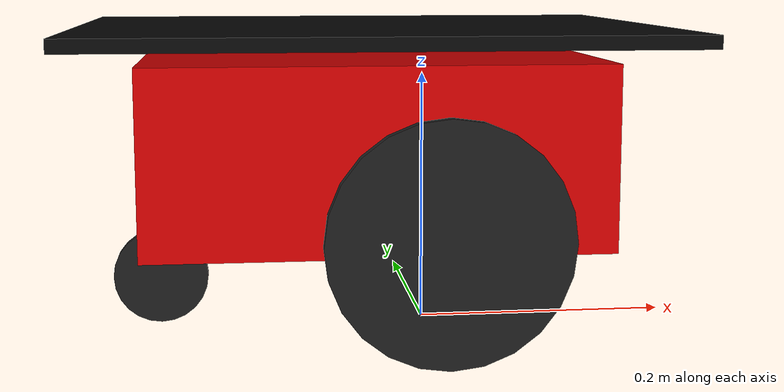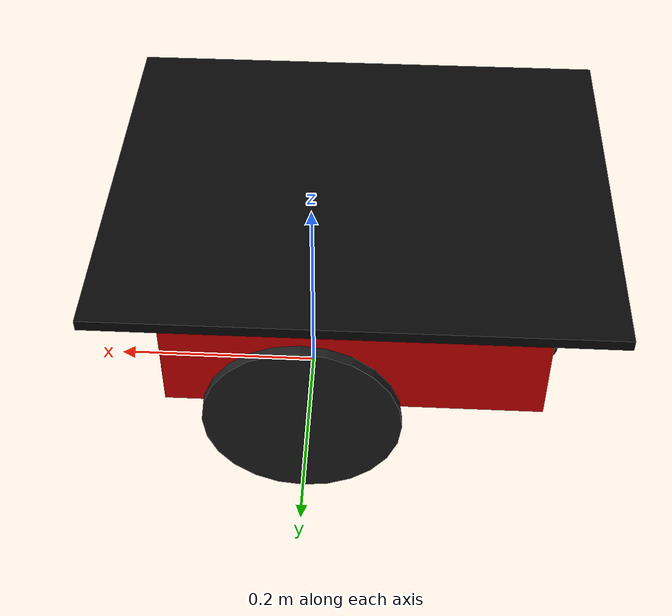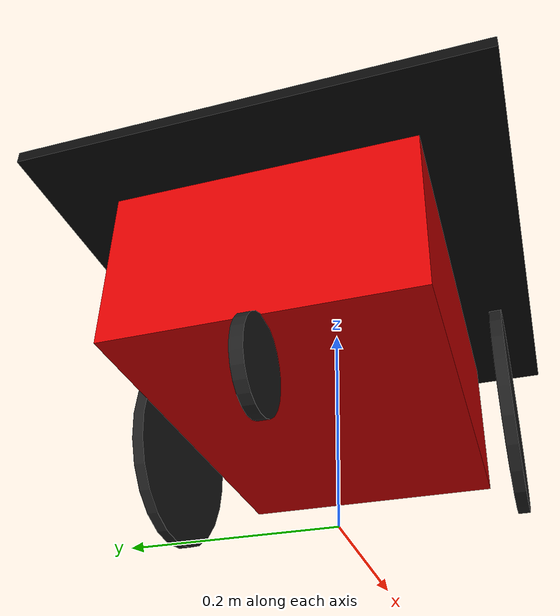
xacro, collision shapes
<?xml version="1.0"?>
<robot name="pioneer3dx"
  xmlns:sensor="http://playerstage.sourceforge.net/gazebo/xmlschema/#sensor"
  xmlns:controller="http://playerstage.sourceforge.net/gazebo/xmlschema/#controller"
  xmlns:interface="http://playerstage.sourceforge.net/gazebo/xmlschema/#interface"
  xmlns:xacro="http://ros.org/wiki/xacro"
  >

  <!-- BEGIN XACRO DEFINITIONS      -->

  <!-- Define PI -->
  <xacro:property name="PI" value="3.14159"/>

  <!-- Wheel moments of inertia -->
  <xacro:property name="IXX" value="0.012411765597"/>
  <xacro:property name="IYY" value="0.015218160428"/>
  <xacro:property name="IZZ" value="0.011763977943"/>
  <xacro:property name="IXY" value="0.0"           />
  <xacro:property name="IXZ" value="0.0"           />
  <xacro:property name="IYZ" value="0.0"           />

  <!-- Macro to create a wheel -->
  <xacro:macro name="WHEEL" params="name parent reflect">

    <!-- Wheel -->
    <link name="${name}_wheel">
      <inertial>
        <mass value="0.5"/>
        <origin xyz="0 0 0"/>
        <inertia ixx="${IXX}" iyy="${IYY}" izz="${IZZ}" ixy="${IXY}" ixz="${IXZ}" iyz="${IYZ}"/>
      </inertial>
      <visual>
        <origin xyz="0 0 0" rpy="0 0 0"/>
        <geometry>
          <mesh filename="package://p2os_urdf/meshes/p3dx_meshes/${name}_wheel.stl"/>
        </geometry>
        <material name="WheelBlack"/>
      </visual>
      <collision>
        <origin xyz="0 0 0" rpy="${-PI/2} 0 0"/>
        <geometry>
          <cylinder radius="0.09" length="0.01"/>
        </geometry>
      </collision>
    </link>
    <gazebo reference="${name}_wheel">
      <material value="Gazebo/Black"/>
      <elem key="mu1" value="0.5"/>
      <elem key="mu2" value="50.0"/>
      <elem key="kp"  value="100000000.0"/>
      <elem key="kd"  value="1.0"/>
    </gazebo>

    <!-- Hubcap -->
    <link name="${name}_hubcap">
      <inertial>
        <mass value="0.01"/>
        <origin xyz="0 0 0"/>
        <inertia ixx="${IXX}" iyy="${IYY}" izz="${IZZ}" ixy="${IXY}" ixz="${IXZ}" iyz="${IYZ}"/>
      </inertial>
      <visual>
        <origin xyz="0 0 0" rpy="0 0 0"/>
        <geometry>
          <mesh filename="package://p2os_urdf/meshes/p3dx_meshes/${name}_hubcap.stl"/>
        </geometry>
        <material name="HubcapYellow"/>
      </visual>
      <collision>
        <origin xyz="0 0 0" rpy="0 0 0"/>
        <geometry>
          <box size="0 0 0"/>
        </geometry>
      </collision>
    </link>
    <gazebo reference="${name}_hubcap">
      <material value="Gazebo/Yellow"/>
    </gazebo>

    <!-- Join wheel and hubcap -->
    <joint name="${name}_hubcap_joint" type="fixed">
      <parent link="${name}_wheel"/>
      <child link="${name}_hubcap"/>
      <origin xyz="0 0 0" rpy="0 0 0"/>
    </joint>

    <!-- Join wheel and base_link -->
    <joint name="${name}_wheel_joint" type="continuous">
      <parent link="base_link"/>
      <child link="${name}_wheel"/>
      <axis xyz="0 1 0"/>
      <limit effort="100" velocity="100"/>
      <joint_properties damping="0.0" friction="0.0"/>
      <origin xyz="0 ${reflect*0.158} 0.091" rpy="0 0 0"/>
    </joint>

  </xacro:macro>

  <!-- END XACRO DEFINITIONS        -->

  <!-- Materials -->
  <material name="WheelBlack" >   <color rgba="0.117 0.117 0.117 1.0"/> </material>
  <material name="HubcapYellow">  <color rgba="1.000 0.811 0.151 1.0"/> </material>
  <material name="ChassisRed">    <color rgba="0.851 0.000 0.000 1.0"/> </material>
  <material name="TopBlack">      <color rgba="0.038 0.038 0.038 1.0"/> </material>
  <material name="SwivelGrey">    <color rgba="0.500 0.500 0.500 1.0"/> </material>
  <material name="SonarYellow">   <color rgba="0.715 0.583 0.210 1.0"/> </material>

  <!-- Base link -->
  <link name="base_link">
    <inertial>
      <mass value="3.5"/>
      <origin xyz="-0.05 0 0"/>
      <inertia ixx="1" ixy="0" ixz="0" iyy="1" iyz="0" izz="1"/>
    </inertial>
    <visual>
      <origin xyz="-0.045 0 0.148" rpy="0 0 0"/>
      <geometry>
        <mesh filename="package://p2os_urdf/meshes/p3dx_meshes/chassis.stl"/>
      </geometry>
      <material name="ChassisRed"/>
    </visual>
    <collision>
      <origin xyz="-0.045 0 0.145" rpy="0 0 0"/>
        <geometry>
          <box size="0.35 0.25 0.14"/>
        </geometry>
    </collision>
  </link>
  <gazebo reference="base_link">
    <material value="Gazebo/Red"/>
  </gazebo>

  <!-- Top plate -->
  <link name="top_plate">
    <inertial>
      <mass value="0.01"/>
      <origin xyz="0 0 0"/>
      <inertia ixx="1" ixy="0" ixz="0" iyy="1" iyz="0" izz="1"/>
    </inertial>
    <visual>
      <origin xyz="0 0 0" rpy="0 0 0"/>
      <geometry>
        <mesh filename="package://p2os_urdf/meshes/p3dx_meshes/top.stl"/>
      </geometry>
      <material name="TopBlack"/>
    </visual>
    <collision>
      <origin xyz="0.0 0 0" rpy="0 0 0"/>
      <geometry>
        <box size="0.45 0.38 0.01"/>
      </geometry>
    </collision>
  </link>
  <gazebo reference="top_plate">
    <material value="Gazebo/Black"/>
  </gazebo>

  <!-- Join top_plate and base_link -->
  <joint name="top_joint" type="fixed">
    <parent link="base_link"/>
    <child link="top_plate"/>
    <origin xyz="-0.045 0 0.234" rpy="0 0 0"/>
  </joint>

  <!-- Swivel -->
  <link name="swivel">
    <inertial>
      <mass value="0.1"/>
      <origin xyz="0 0 0"/>
      <inertia ixx="0.01" ixy="0" ixz="0" iyy="0.01" iyz="0" izz="0.01"/>
    </inertial>
    <visual>
      <origin xyz="0 0 0" rpy="0 0 0"/>
      <geometry>
        <mesh filename="package://p2os_urdf/meshes/p3dx_meshes/swivel.stl"/>
      </geometry>
      <material name="SwivelGrey"/>
    </visual>
    <collision>
      <origin xyz="0 0 0" rpy="0 0 0"/>
      <geometry>
        <box size="0 0 0"/>
      </geometry>
    </collision>
  </link>
  <gazebo reference="swivel">
    <material value="Gazebo/Grey"/>
  </gazebo>

  <!-- Join swivel and base_link -->
  <joint name="swivel_joint" type="continuous">
    <parent link="base_link"/>
    <child link="swivel"/>
    <origin xyz="-0.185 0 0.055" rpy="0 0 0"/>
    <axis xyz="0 0 1"/>
    <limit effort="100" velocity="100" k_velocity="0"/>
    <joint_properties damping="0.0" friction="0.0"/>
  </joint>

  <!-- Center wheel -->
  <link name="center_wheel">
    <inertial>
      <mass value="0.1"/>
      <origin xyz="0 0 0"/>
      <inertia ixx="0.012411765597" ixy="-0.000711733678" ixz="0.00050272983" iyy="0.015218160428" iyz="-0.000004273467" izz="0.011763977943"/>
    </inertial>
    <visual>
      <origin xyz="0 0 0" rpy="0 0 0"/>
      <geometry>
        <mesh filename="package://p2os_urdf/meshes/p3dx_meshes/center_wheel.stl"/>
      </geometry>
      <material name="WheelBlack"/>
    </visual>
    <collision>
      <origin xyz="0 0 0" rpy="${-PI/2.0} 0 0"/>
      <geometry>
        <cylinder radius="0.0375" length="0.01"/>
      </geometry>
    </collision>
  </link>
  <gazebo reference="center_wheel">
    <material value="Gazebo/Black"/>
    <elem key="mu1" value="10.0"/>
    <elem key="mu2" value="10.0"/>
    <elem key="kp"  value="1000000.0"/>
    <elem key="kd"  value="1.0"/>
  </gazebo>

  <!-- Join center_wheel and swivel -->
  <joint name="center_wheel_joint" type="continuous">
    <parent link="swivel"/>
    <child link="center_wheel"/>
    <origin xyz="-0.026 0 -0.016" rpy="0 0 0"/>
    <axis xyz="0 1 0"/>
    <limit effort="100" velocity="100" k_velocity="0"/>
    <joint_properties damping="0.0" friction="0.0"/>
  </joint>

  <!-- Center hubcap -->
  <link name="center_hubcap">
    <inertial>
      <mass value="0.01"/>
      <origin xyz="0 0 0"/>
      <inertia ixx="0.012411765597" ixy="-0.000711733678" ixz="0.00050272983" iyy="0.015218160428" iyz="-0.000004273467" izz="0.011763977943"/>
    </inertial>
    <visual>
      <origin xyz="0 0 0" rpy="0 0 0"/>
      <geometry>
        <mesh filename="package://p2os_urdf/meshes/p3dx_meshes/center_hubcap.stl"/>
      </geometry>
      <material name="SwivelGrey"/>
    </visual>
    <collision>
      <origin xyz="0 0 0" rpy="0 0 0"/>
      <geometry>
        <box size="0 0 0"/>
      </geometry>
    </collision>
  </link>
  <gazebo reference="center_hubcap">
    <material value="Gazebo/Grey"/>
  </gazebo>

  <!-- Join center_wheel and center_hubcap -->
  <joint name="center_hubcap_joint" type="fixed">
    <parent link="center_wheel"/>
    <child link="center_hubcap"/>
    <origin xyz="-0.0035 0 -0.001" rpy="0 0 0"/>
  </joint>

  <!-- Front sonars -->
  <link name="front_sonar">
    <inertial>
      <mass value="0.0001"/>
      <origin xyz="0 0 0"/>
      <inertia ixx="1" ixy="0" ixz="0" iyy="1" iyz="0" izz="1"/>
    </inertial>
    <visual>
      <origin xyz="0 0 0" rpy="0 0 0"/>
      <geometry>
        <mesh filename="package://p2os_urdf/meshes/p3dx_meshes/front_sonar.stl"/>
      </geometry>
      <material name="SonarYellow"/>
    </visual>
    <collision>
      <origin xyz="0 0 0" rpy="0 0 0"/>
      <geometry>
        <box size="0 0 0"/>
      </geometry>
    </collision>
  </link>
  <gazebo reference="front_sonar">
    <material value="Gazebo/Yellow"/>
  </gazebo>

  <!-- Join front_sonar and base_link -->
  <joint name="front_sonar_joint" type="fixed">
    <parent link="base_link"/>
    <child link="front_sonar"/>
    <origin xyz="-0.198 0 0.208" rpy="0 0 0"/>
  </joint>

  <!-- Back sonars -->
  <link name="back_sonar">
    <inertial>
      <mass value="0.0001"/>
      <origin xyz="0 0 0"/>
      <inertia ixx="1" ixy="0" ixz="0" iyy="1" iyz="0" izz="1"/>
    </inertial>
    <visual>
      <origin xyz="0 0 0" rpy="0 0 0"/>
      <geometry>
        <mesh filename="package://p2os_urdf/meshes/p3dx_meshes/back_sonar.stl"/>
      </geometry>
      <material name="SonarYellow"/>
    </visual>
    <collision>
      <origin xyz="0 0 0" rpy="0 0 0"/>
      <geometry>
        <box size="0 0 0"/>
      </geometry>
    </collision>
  </link>
  <gazebo reference="back_sonar">
    <material value="Gazebo/Yellow"/>
  </gazebo>

  <!-- Join back_sonar and base_link -->
  <joint name="back_sonar_joint" type="fixed">
    <parent link="base_link"/>
    <child link="back_sonar"/>
    <origin xyz="0.109 0 0.209" rpy="0 0 0"/>
  </joint>

  <!-- Wheels -->
  <xacro:WHEEL name="left" parent="base_link" reflect="1"/>
  <xacro:WHEEL name="right" parent="base_link" reflect="-1"/>

  <!-- Controllers -->
  <gazebo>
    <controller:gazebo_ros_diffdrive_plugin
        name="gazebo_ros_diffdrive_plugin"
        plugin="libgazebo_ros_diffdrive_plugin.so"
        >
        <alwaysOn>true</alwaysOn>
        <update>100</update>
        <updateRate>100.0</updateRate>
        <leftJoint>left_wheel_joint</leftJoint>
        <rightJoint>right_wheel_joint</rightJoint>
        <wheelSeparation>0.39</wheelSeparation>
        <wheelDiameter>0.15</wheelDiameter>
        <torque>5</torque>
        <interface:position name="position_iface_0"/>
    </controller:gazebo_ros_diffdrive_plugin>

  </gazebo>

</robot>
